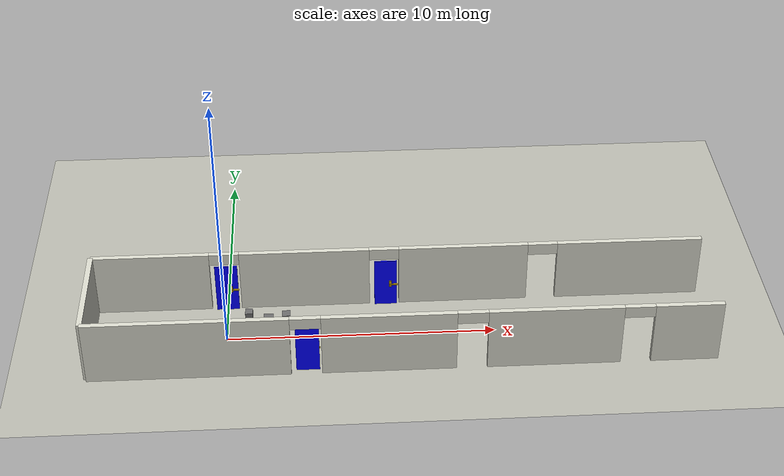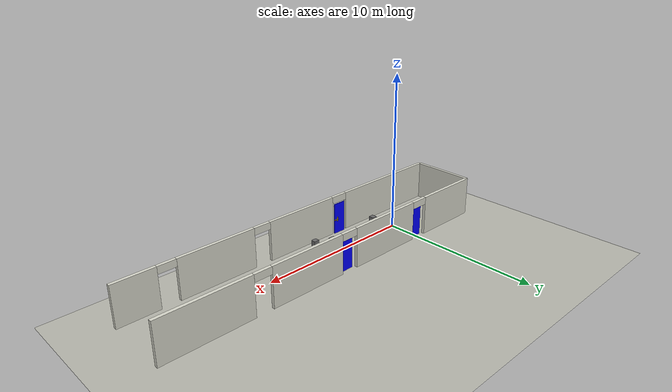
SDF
<sdf version="1.6">
 <world name="fire_corridor">
  <model name="ground_plane">
   <static>true</static>
   <link name="link">
    <collision name="col"><geometry><plane><normal>0 0 1</normal><size>30 10</size></plane></geometry></collision>
    <visual name="vis">
     <geometry><plane><normal>0 0 1</normal><size>30 10</size></plane></geometry>
     <material><ambient>0.72 0.72 0.68 1</ambient><diffuse>0.72 0.72 0.68 1</diffuse></material>
    </visual>
   </link>
  </model>
  <model name="wall_south">
   <static>true</static>
   <pose>6.5 -2 1.25 0 0 0</pose>
   <link name="link">
    <collision name="collision_wall_0">
     <geometry><box><size>7.388571 0.200000 2.500000</size></box></geometry>
     <pose>-7.805714 0 0.000000 0 0 0</pose>
    </collision>
    <visual name="visual_wall_0">
     <geometry><box><size>7.388571 0.200000 2.500000</size></box></geometry>
     <material><ambient>0.85 0.85 0.80 1</ambient><diffuse>0.85 0.85 0.80 1</diffuse></material>
     <pose>-7.805714 0 0.000000 0 0 0</pose>
    </visual>
    <collision name="collision_lintel_0">
     <geometry><box><size>1.116429 0.200000 0.450000</size></box></geometry>
     <pose>-3.553214 0 1.025000 0 0 0</pose>
    </collision>
    <visual name="visual_lintel_0">
     <geometry><box><size>1.116429 0.200000 0.450000</size></box></geometry>
     <material><ambient>0.85 0.85 0.80 1</ambient><diffuse>0.85 0.85 0.80 1</diffuse></material>
     <pose>-3.553214 0 1.025000 0 0 0</pose>
    </visual>
    <collision name="collision_wall_1">
     <geometry><box><size>4.883571 0.200000 2.500000</size></box></geometry>
     <pose>-0.553214 0 0.000000 0 0 0</pose>
    </collision>
    <visual name="visual_wall_1">
     <geometry><box><size>4.883571 0.200000 2.500000</size></box></geometry>
     <material><ambient>0.85 0.85 0.80 1</ambient><diffuse>0.85 0.85 0.80 1</diffuse></material>
     <pose>-0.553214 0 0.000000 0 0 0</pose>
    </visual>
    <collision name="collision_lintel_1">
     <geometry><box><size>1.116429 0.200000 0.450000</size></box></geometry>
     <pose>2.446786 0 1.025000 0 0 0</pose>
    </collision>
    <visual name="visual_lintel_1">
     <geometry><box><size>1.116429 0.200000 0.450000</size></box></geometry>
     <material><ambient>0.85 0.85 0.80 1</ambient><diffuse>0.85 0.85 0.80 1</diffuse></material>
     <pose>2.446786 0 1.025000 0 0 0</pose>
    </visual>
    <collision name="collision_wall_2">
     <geometry><box><size>4.883571 0.200000 2.500000</size></box></geometry>
     <pose>5.446786 0 0.000000 0 0 0</pose>
    </collision>
    <visual name="visual_wall_2">
     <geometry><box><size>4.883571 0.200000 2.500000</size></box></geometry>
     <material><ambient>0.85 0.85 0.80 1</ambient><diffuse>0.85 0.85 0.80 1</diffuse></material>
     <pose>5.446786 0 0.000000 0 0 0</pose>
    </visual>
    <collision name="collision_lintel_2">
     <geometry><box><size>1.116429 0.200000 0.450000</size></box></geometry>
     <pose>8.446786 0 1.025000 0 0 0</pose>
    </collision>
    <visual name="visual_lintel_2">
     <geometry><box><size>1.116429 0.200000 0.450000</size></box></geometry>
     <material><ambient>0.85 0.85 0.80 1</ambient><diffuse>0.85 0.85 0.80 1</diffuse></material>
     <pose>8.446786 0 1.025000 0 0 0</pose>
    </visual>
    <collision name="collision_wall_end">
     <geometry><box><size>2.495000 0.200000 2.500000</size></box></geometry>
     <pose>10.252500 0 0.000000 0 0 0</pose>
    </collision>
    <visual name="visual_wall_end">
     <geometry><box><size>2.495000 0.200000 2.500000</size></box></geometry>
     <material><ambient>0.85 0.85 0.80 1</ambient><diffuse>0.85 0.85 0.80 1</diffuse></material>
     <pose>10.252500 0 0.000000 0 0 0</pose>
    </visual>
   </link>
  </model>
  <model name="wall_north">
   <static>true</static>
   <pose>6.5 2 1.25 0 0 0</pose>
   <link name="link">
    <collision name="collision_wall_0">
     <geometry><box><size>4.388571 0.200000 2.500000</size></box></geometry>
     <pose>-9.305714 0 0.000000 0 0 0</pose>
    </collision>
    <visual name="visual_wall_0">
     <geometry><box><size>4.388571 0.200000 2.500000</size></box></geometry>
     <material><ambient>0.85 0.85 0.80 1</ambient><diffuse>0.85 0.85 0.80 1</diffuse></material>
     <pose>-9.305714 0 0.000000 0 0 0</pose>
    </visual>
    <collision name="collision_lintel_0">
     <geometry><box><size>1.116429 0.200000 0.450000</size></box></geometry>
     <pose>-6.553214 0 1.025000 0 0 0</pose>
    </collision>
    <visual name="visual_lintel_0">
     <geometry><box><size>1.116429 0.200000 0.450000</size></box></geometry>
     <material><ambient>0.85 0.85 0.80 1</ambient><diffuse>0.85 0.85 0.80 1</diffuse></material>
     <pose>-6.553214 0 1.025000 0 0 0</pose>
    </visual>
    <collision name="collision_wall_1">
     <geometry><box><size>4.883571 0.200000 2.500000</size></box></geometry>
     <pose>-3.553214 0 0.000000 0 0 0</pose>
    </collision>
    <visual name="visual_wall_1">
     <geometry><box><size>4.883571 0.200000 2.500000</size></box></geometry>
     <material><ambient>0.85 0.85 0.80 1</ambient><diffuse>0.85 0.85 0.80 1</diffuse></material>
     <pose>-3.553214 0 0.000000 0 0 0</pose>
    </visual>
    <collision name="collision_lintel_1">
     <geometry><box><size>1.116429 0.200000 0.450000</size></box></geometry>
     <pose>-0.553214 0 1.025000 0 0 0</pose>
    </collision>
    <visual name="visual_lintel_1">
     <geometry><box><size>1.116429 0.200000 0.450000</size></box></geometry>
     <material><ambient>0.85 0.85 0.80 1</ambient><diffuse>0.85 0.85 0.80 1</diffuse></material>
     <pose>-0.553214 0 1.025000 0 0 0</pose>
    </visual>
    <collision name="collision_wall_2">
     <geometry><box><size>4.883571 0.200000 2.500000</size></box></geometry>
     <pose>2.446786 0 0.000000 0 0 0</pose>
    </collision>
    <visual name="visual_wall_2">
     <geometry><box><size>4.883571 0.200000 2.500000</size></box></geometry>
     <material><ambient>0.85 0.85 0.80 1</ambient><diffuse>0.85 0.85 0.80 1</diffuse></material>
     <pose>2.446786 0 0.000000 0 0 0</pose>
    </visual>
    <collision name="collision_lintel_2">
     <geometry><box><size>1.116429 0.200000 0.450000</size></box></geometry>
     <pose>5.446786 0 1.025000 0 0 0</pose>
    </collision>
    <visual name="visual_lintel_2">
     <geometry><box><size>1.116429 0.200000 0.450000</size></box></geometry>
     <material><ambient>0.85 0.85 0.80 1</ambient><diffuse>0.85 0.85 0.80 1</diffuse></material>
     <pose>5.446786 0 1.025000 0 0 0</pose>
    </visual>
    <collision name="collision_wall_end">
     <geometry><box><size>5.495000 0.200000 2.500000</size></box></geometry>
     <pose>8.752500 0 0.000000 0 0 0</pose>
    </collision>
    <visual name="visual_wall_end">
     <geometry><box><size>5.495000 0.200000 2.500000</size></box></geometry>
     <material><ambient>0.85 0.85 0.80 1</ambient><diffuse>0.85 0.85 0.80 1</diffuse></material>
     <pose>8.752500 0 0.000000 0 0 0</pose>
    </visual>
   </link>
  </model>
  <model name="wall_west">
   <static>true</static>
   <pose>-5 0 1.25 0 0 0</pose>
   <link name="link">
    <collision name="col"><geometry><box><size>0.2 4 2.5</size></box></geometry></collision>
    <visual name="vis">
     <geometry><box><size>0.2 4 2.5</size></box></geometry>
     <material><ambient>0.85 0.85 0.80 1</ambient><diffuse>0.85 0.85 0.80 1</diffuse></material>
    </visual>
   </link>
  </model>
  <model name="door_blue4">
   <static>false</static>
   <pose>0 1.86 1 0 0 0</pose>
   <link name="panel">
    <inertial>
     <mass>2.0</mass>
     <inertia><ixx>0.90</ixx><ixy>0</ixy><ixz>0</ixz><iyy>0.90</iyy><iyz>0</iyz><izz>0.12</izz></inertia>
    </inertial>
    <collision name="panel_collision">
     <geometry><box><size>0.85 0.045 2</size></box></geometry>
     <surface><friction><ode><mu>0.8</mu><mu2>0.8</mu2></ode></friction></surface>
    </collision>
    <visual name="panel">
     <geometry><box><size>0.85 0.045 2</size></box></geometry>
     <material>
      <ambient>0.0 0.0 1.0 1</ambient>
      <diffuse>0.0 0.0 1.0 1</diffuse>
      <emissive>0.0 0.0 1.0 1</emissive>
     </material>
    </visual>
    <collision name="handle_collision">
     <pose>0.3 -0.074 -0.05 0 0 0</pose>
     <geometry><box><size>0.32 0.07 0.055</size></box></geometry>
    </collision>
    <visual name="handle_backplate">
     <pose>0.18 -0.032 -0.05 0 0 0</pose>
     <geometry><box><size>0.08 0.022 0.28</size></box></geometry>
     <material><ambient>0.75 0.60 0.05 1</ambient><diffuse>0.75 0.60 0.05 1</diffuse></material>
    </visual>
    <visual name="handle">
     <pose>0.3 -0.078 -0.05 0 0 0</pose>
     <geometry><box><size>0.32 0.052 0.052</size></box></geometry>
     <material><ambient>0.75 0.60 0.05 1</ambient><diffuse>0.75 0.60 0.05 1</diffuse></material>
    </visual>
   </link>
   <joint name="hinge" type="revolute">
    <pose>-0.425 0 0 0 0 0</pose>
    <parent>world</parent>
    <child>panel</child>
    <axis>
     <xyz>0 0 1</xyz>
     <limit><lower>-2.10</lower><upper>2.10</upper><effort>40</effort><velocity>1.5</velocity></limit>
     <dynamics><damping>1.0</damping><friction>0.05</friction></dynamics>
    </axis>
   </joint>
   <plugin filename="ignition-gazebo-joint-position-controller-system" name="gz::sim::systems::JointPositionController">
    <joint_name>hinge</joint_name>
    <topic>/fire_robot/door/blue/x0/yp186/sn/cmd</topic>
    <p_gain>8.0</p_gain>
    <d_gain>0.4</d_gain>
    <cmd_max>60</cmd_max>
    <cmd_min>-60</cmd_min>
   </plugin>
  </model>
  <model name="door_blue1">
   <static>false</static>
   <pose>3 -1.86 1 0 0 0</pose>
   <link name="panel">
    <inertial>
     <mass>2.0</mass>
     <inertia><ixx>0.90</ixx><ixy>0</ixy><ixz>0</ixz><iyy>0.90</iyy><iyz>0</iyz><izz>0.12</izz></inertia>
    </inertial>
    <collision name="panel_collision">
     <geometry><box><size>0.85 0.045 2</size></box></geometry>
     <surface><friction><ode><mu>0.8</mu><mu2>0.8</mu2></ode></friction></surface>
    </collision>
    <visual name="panel">
     <geometry><box><size>0.85 0.045 2</size></box></geometry>
     <material>
      <ambient>0.0 0.0 1.0 1</ambient>
      <diffuse>0.0 0.0 1.0 1</diffuse>
      <emissive>0.0 0.0 1.0 1</emissive>
     </material>
    </visual>
    <collision name="handle_collision">
     <pose>0.3 0.074 -0.05 0 0 0</pose>
     <geometry><box><size>0.32 0.07 0.055</size></box></geometry>
    </collision>
    <visual name="handle_backplate">
     <pose>0.18 0.032 -0.05 0 0 0</pose>
     <geometry><box><size>0.08 0.022 0.28</size></box></geometry>
     <material><ambient>0.75 0.60 0.05 1</ambient><diffuse>0.75 0.60 0.05 1</diffuse></material>
    </visual>
    <visual name="handle">
     <pose>0.3 0.078 -0.05 0 0 0</pose>
     <geometry><box><size>0.32 0.052 0.052</size></box></geometry>
     <material><ambient>0.75 0.60 0.05 1</ambient><diffuse>0.75 0.60 0.05 1</diffuse></material>
    </visual>
   </link>
   <joint name="hinge" type="revolute">
    <pose>-0.425 0 0 0 0 0</pose>
    <parent>world</parent>
    <child>panel</child>
    <axis>
     <xyz>0 0 1</xyz>
     <limit><lower>-2.10</lower><upper>2.10</upper><effort>40</effort><velocity>1.5</velocity></limit>
     <dynamics><damping>1.0</damping><friction>0.05</friction></dynamics>
    </axis>
   </joint>
   <plugin filename="ignition-gazebo-joint-position-controller-system" name="gz::sim::systems::JointPositionController">
    <joint_name>hinge</joint_name>
    <topic>/fire_robot/door/blue/x300/yn186/sp/cmd</topic>
    <p_gain>8.0</p_gain>
    <d_gain>0.4</d_gain>
    <cmd_max>60</cmd_max>
    <cmd_min>-60</cmd_min>
   </plugin>
  </model>
  <model name="door_blue5">
   <static>false</static>
   <pose>6 1.86 1 0 0 0</pose>
   <link name="panel">
    <inertial>
     <mass>2.0</mass>
     <inertia><ixx>0.90</ixx><ixy>0</ixy><ixz>0</ixz><iyy>0.90</iyy><iyz>0</iyz><izz>0.12</izz></inertia>
    </inertial>
    <collision name="panel_collision">
     <geometry><box><size>0.85 0.045 2</size></box></geometry>
     <surface><friction><ode><mu>0.8</mu><mu2>0.8</mu2></ode></friction></surface>
    </collision>
    <visual name="panel">
     <geometry><box><size>0.85 0.045 2</size></box></geometry>
     <material>
      <ambient>0.0 0.0 1.0 1</ambient>
      <diffuse>0.0 0.0 1.0 1</diffuse>
      <emissive>0.0 0.0 1.0 1</emissive>
     </material>
    </visual>
    <collision name="handle_collision">
     <pose>0.3 -0.074 -0.05 0 0 0</pose>
     <geometry><box><size>0.32 0.07 0.055</size></box></geometry>
    </collision>
    <visual name="handle_backplate">
     <pose>0.18 -0.032 -0.05 0 0 0</pose>
     <geometry><box><size>0.08 0.022 0.28</size></box></geometry>
     <material><ambient>0.75 0.60 0.05 1</ambient><diffuse>0.75 0.60 0.05 1</diffuse></material>
    </visual>
    <visual name="handle">
     <pose>0.3 -0.078 -0.05 0 0 0</pose>
     <geometry><box><size>0.32 0.052 0.052</size></box></geometry>
     <material><ambient>0.75 0.60 0.05 1</ambient><diffuse>0.75 0.60 0.05 1</diffuse></material>
    </visual>
   </link>
   <joint name="hinge" type="revolute">
    <pose>-0.425 0 0 0 0 0</pose>
    <parent>world</parent>
    <child>panel</child>
    <axis>
     <xyz>0 0 1</xyz>
     <limit><lower>-2.10</lower><upper>2.10</upper><effort>40</effort><velocity>1.5</velocity></limit>
     <dynamics><damping>1.0</damping><friction>0.05</friction></dynamics>
    </axis>
   </joint>
   <plugin filename="ignition-gazebo-joint-position-controller-system" name="gz::sim::systems::JointPositionController">
    <joint_name>hinge</joint_name>
    <topic>/fire_robot/door/blue/x600/yp186/sn/cmd</topic>
    <p_gain>8.0</p_gain>
    <d_gain>0.4</d_gain>
    <cmd_max>60</cmd_max>
    <cmd_min>-60</cmd_min>
   </plugin>
  </model>
  <model name="v5_center_block_00_start">
   <static>true</static>
   <pose>0.55 -1.25 0.22 0 0 0</pose>
   <link name="link">
    <collision name="col"><geometry><box><size>0.32 0.36 0.44</size></box></geometry></collision>
    <visual name="vis">
     <geometry><box><size>0.32 0.36 0.44</size></box></geometry>
     <material><ambient>0.42 0.42 0.42 1</ambient><diffuse>0.42 0.42 0.42 1</diffuse></material>
    </visual>
   </link>
  </model>
  <model name="v5_center_block_01_pre_blue1">
   <static>true</static>
   <pose>1.55 0.65 0.24 0 0 0</pose>
   <link name="link">
    <collision name="col"><geometry><box><size>0.36 0.42 0.48</size></box></geometry></collision>
    <visual name="vis">
     <geometry><box><size>0.36 0.42 0.48</size></box></geometry>
     <material><ambient>0.42 0.42 0.42 1</ambient><diffuse>0.42 0.42 0.42 1</diffuse></material>
    </visual>
   </link>
  </model>
  <model name="v5_center_block_02_between_blue1_blue2">
   <static>true</static>
   <pose>4.65 -0.65 0.28 0 0 0</pose>
   <link name="link">
    <collision name="col"><geometry><box><size>0.40 0.45 0.56</size></box></geometry></collision>
    <visual name="vis">
     <geometry><box><size>0.40 0.45 0.56</size></box></geometry>
     <material><ambient>0.42 0.42 0.42 1</ambient><diffuse>0.42 0.42 0.42 1</diffuse></material>
    </visual>
   </link>
  </model>
  <model name="v5_side_clutter_01_right">
   <static>true</static>
   <pose>0.80 1.20 0.18 0 0 0</pose>
   <link name="link">
    <collision name="col"><geometry><box><size>0.28 0.32 0.36</size></box></geometry></collision>
    <visual name="vis">
     <geometry><box><size>0.28 0.32 0.36</size></box></geometry>
     <material><ambient>0.42 0.42 0.42 1</ambient><diffuse>0.42 0.42 0.42 1</diffuse></material>
    </visual>
   </link>
  </model>
  <model name="v5_side_clutter_02_left">
   <static>true</static>
   <pose>2.20 0.95 0.20 0 0 0</pose>
   <link name="link">
    <collision name="col"><geometry><box><size>0.30 0.34 0.40</size></box></geometry></collision>
    <visual name="vis">
     <geometry><box><size>0.30 0.34 0.40</size></box></geometry>
     <material><ambient>0.42 0.42 0.42 1</ambient><diffuse>0.42 0.42 0.42 1</diffuse></material>
    </visual>
   </link>
  </model>
  <model name="v5_side_clutter_03_right">
   <static>true</static>
   <pose>5.45 -1.42 0.22 0 0 0</pose>
   <link name="link">
    <collision name="col"><geometry><box><size>0.34 0.30 0.44</size></box></geometry></collision>
    <visual name="vis">
     <geometry><box><size>0.34 0.30 0.44</size></box></geometry>
     <material><ambient>0.42 0.42 0.42 1</ambient><diffuse>0.42 0.42 0.42 1</diffuse></material>
    </visual>
   </link>
  </model>
 </world>
</sdf>
